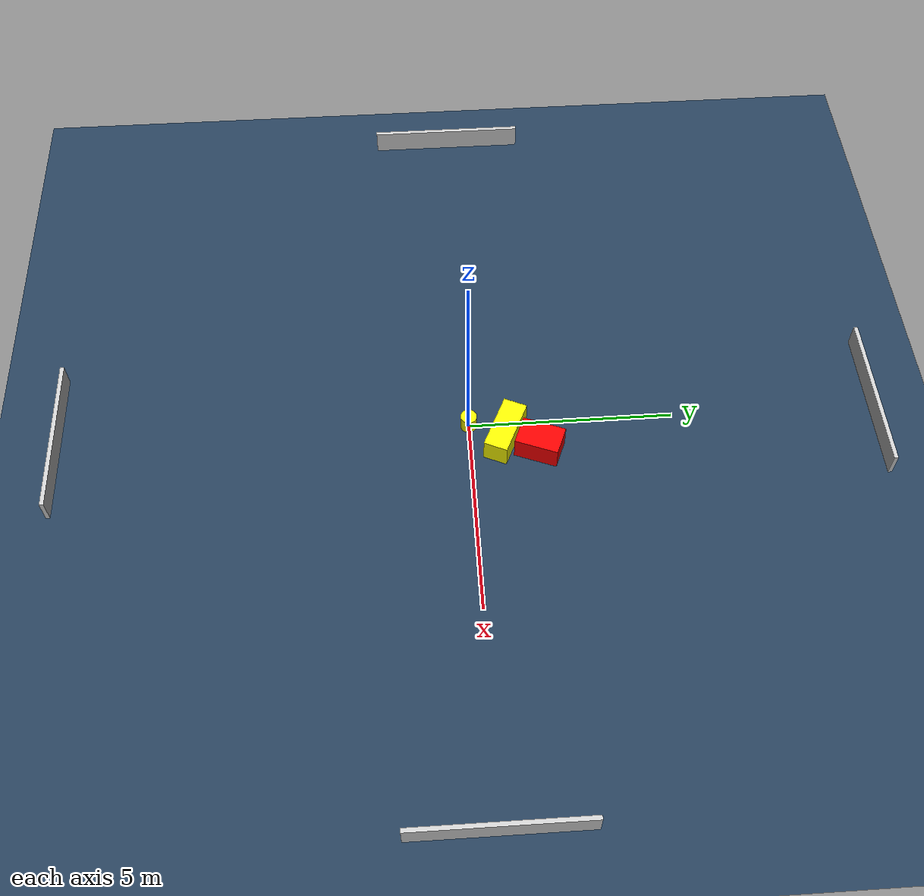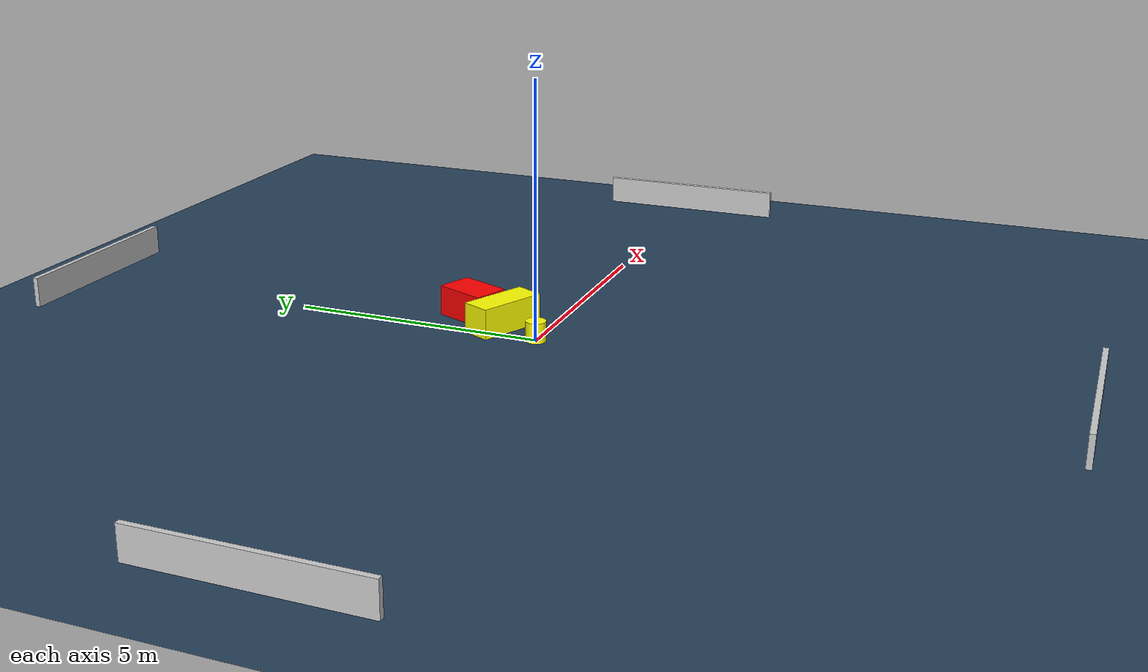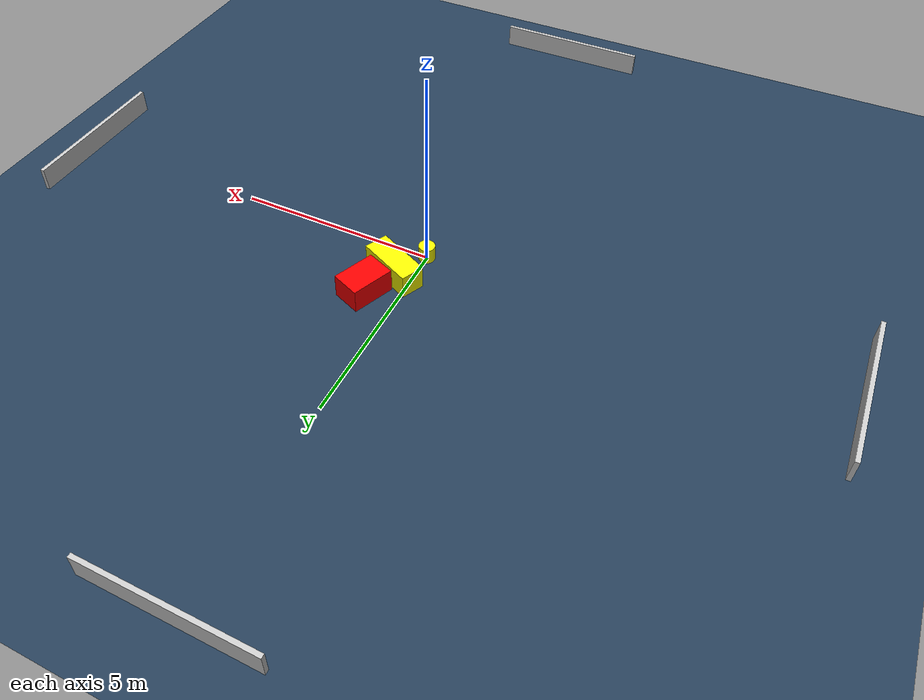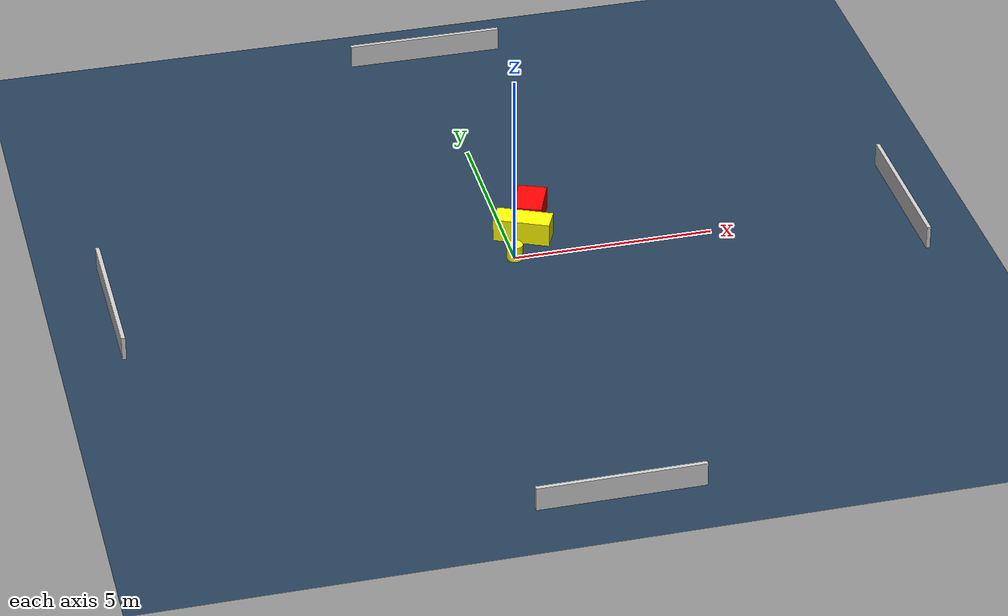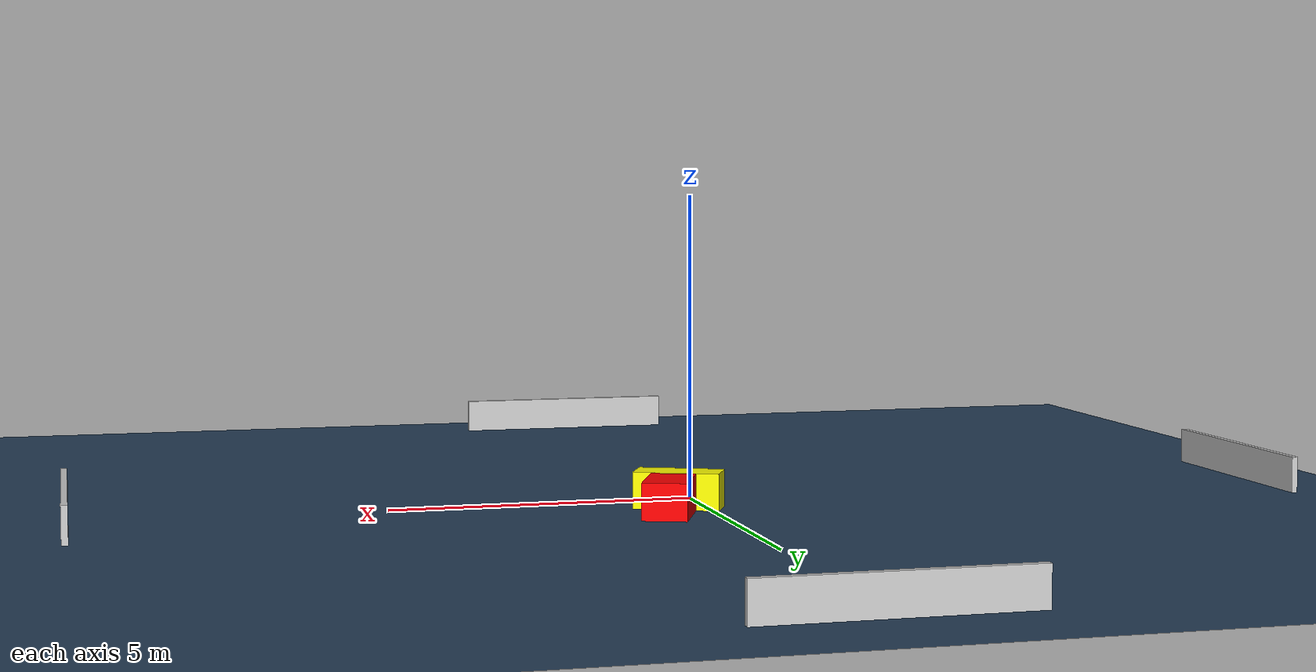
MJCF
<?xml version="1.0" ?>
<mujoco model="generated_environment">
  <option timestep="0.01" integrator="RK4" cone="elliptic"/>
  <default>
    <geom density="1"/>
  </default>
  <asset>
    <texture builtin="gradient" height="3072" name="skybox" rgb1="0.3 0.5 0.7" rgb2="0 0 0" type="skybox" width="512"/>
    <texture builtin="checker" height="300" name="groundplane" rgb1="0.2 0.3 0.4" rgb2="0.1 0.2 0.3" type="2d" width="300"/>
    <material name="groundplane" reflectance="0.2" texrepeat="5 5" texture="groundplane"/>
  </asset>
  <worldbody>
    <light dir="0 0 -1" directional="true" pos="0 0 1.5"/>
    <geom condim="3" friction="0.5 0.005 0.001" material="groundplane" name="floor" pos="0 0 0" size="0 0 0.05" type="plane"/>
    <body name="walls">
      <geom name="wall_1" condim="4" pos="-10.0 0.0 0.3" rgba="0.800000011920929 0.800000011920929 0.800000011920929 1.0" size="0.05 2.0 0.3" type="box"/>
      <geom name="wall_2" condim="4" pos="10.0 0.0 0.3" rgba="0.800000011920929 0.800000011920929 0.800000011920929 1.0" size="0.05 2.0 0.3" type="box"/>
      <geom name="wall_3" condim="4" pos="0.0 -10.0 0.3" rgba="0.800000011920929 0.800000011920929 0.800000011920929 1.0" size="2.0 0.05 0.3" type="box"/>
      <geom name="wall_4" condim="4" pos="0.0 10.0 0.3" rgba="0.800000011920929 0.800000011920929 0.800000011920929 1.0" size="2.0 0.05 0.3" type="box"/>
    </body>
    <body name="robot">
      <joint name="joint_x" type="slide" pos="0 0 0" axis="1 0 0"/>
      <joint name="joint_y" type="slide" pos="0 0 0" axis="0 1 0"/>
      <geom name="robot" type="cylinder" pos="0.0 0.0 0.2" size="0.2 0.2 0.0" mass="5.0" friction="1.0 0.005 0.0001" condim="4" rgba="1.0 1.0 0.0 1.0"/>
    </body>
    <body name="obstacle_1_movable">
      <geom name="obstacle_1_movable" condim="4" pos="0.4252611100059854 0.8633257258011215 0.3" euler="0 0 245.10654601624188" friction="0.0 0.005 0.001" rgba="1.0 1.0 0.0 1.0" size="0.2940890660983666 0.702502496508953 0.3" type="box" mass="0.1"/>
      <joint type="free"/>
    </body>
    <body name="obstacle_2_static">
      <geom name="obstacle_2_static" condim="4" pos="0.7968322421402085 1.6689860887143477 0.3" euler="0 0 248.08164236316594" friction="0.0 0.005 0.001" rgba="1.0 0.0 0.0 1.0" size="0.5333671840291125 0.36167650341480306 0.3" type="box"/>
    </body>
  </worldbody>
  <actuator>
    <motor name="actuator_x" joint="joint_x" gear="1" ctrlrange="-1 1"/>
    <motor name="actuator_y" joint="joint_y" gear="1" ctrlrange="-1 1"/>
  </actuator>
</mujoco>
